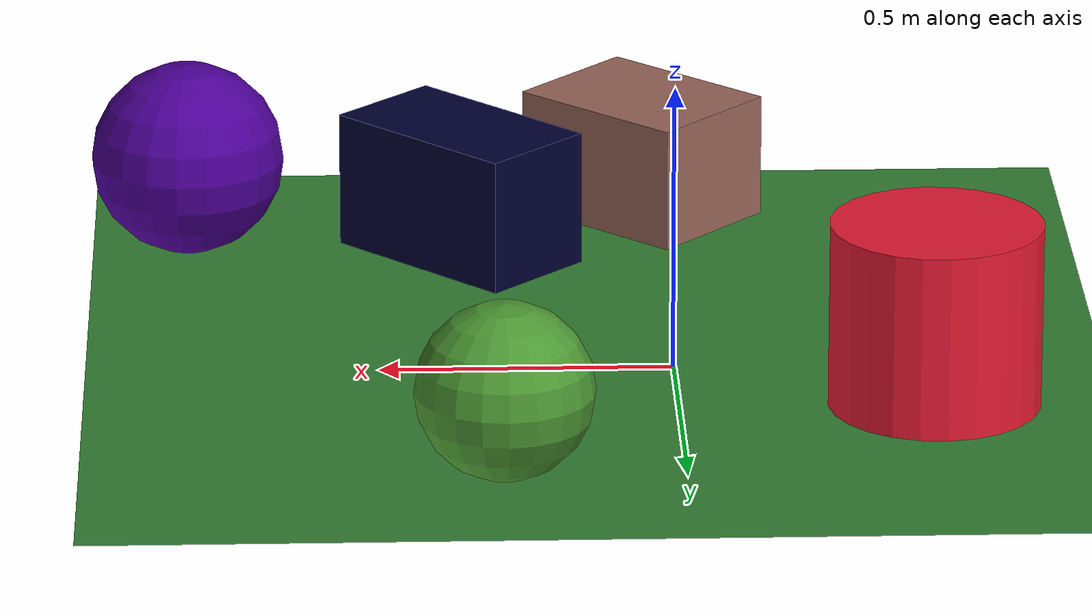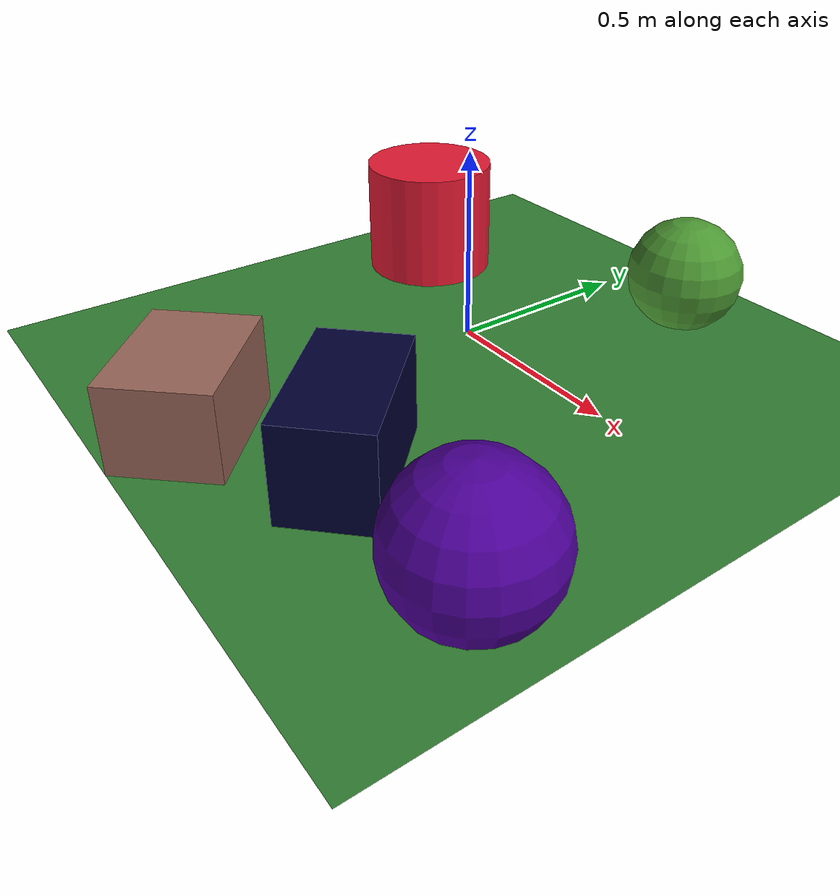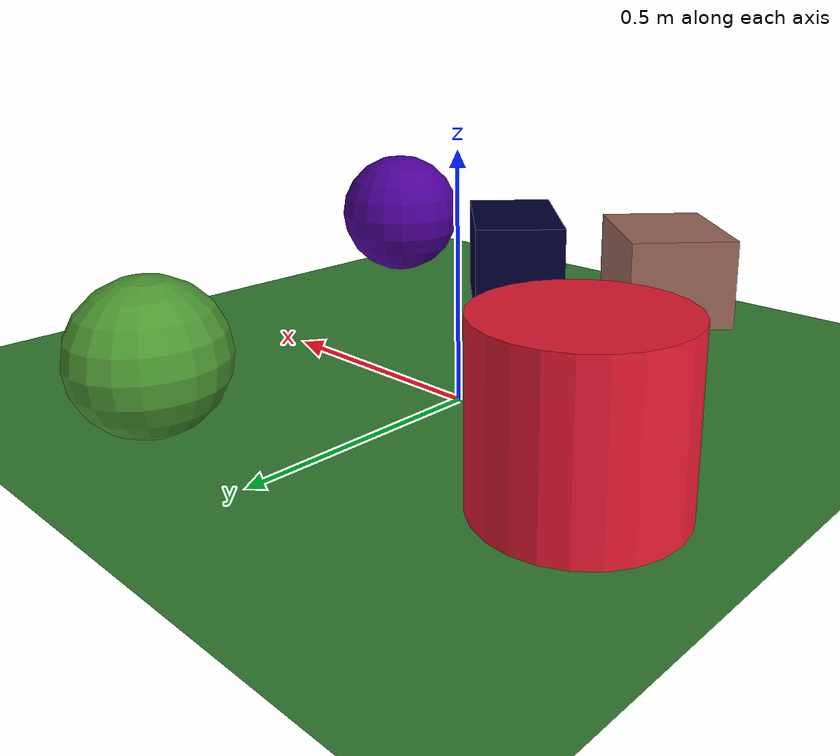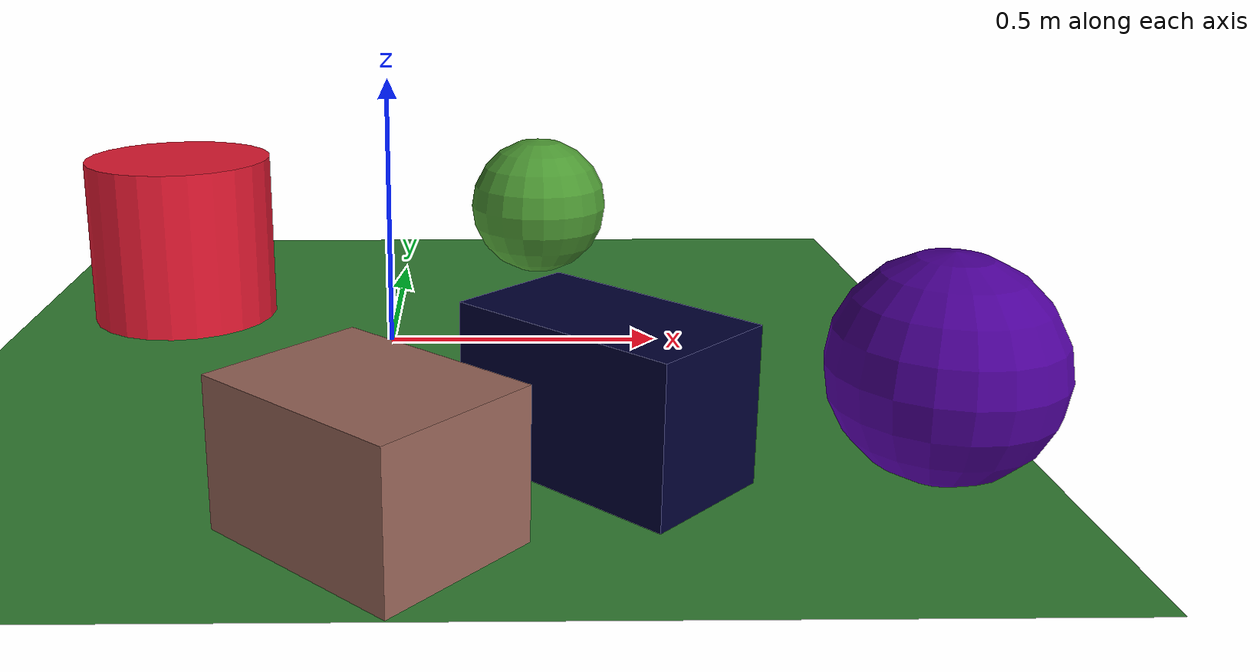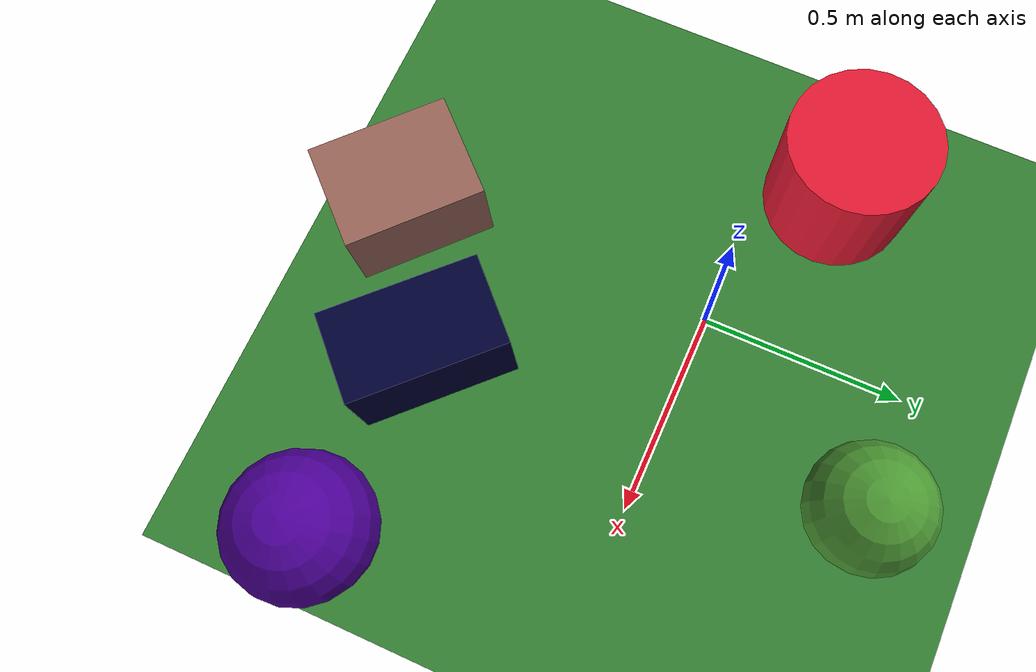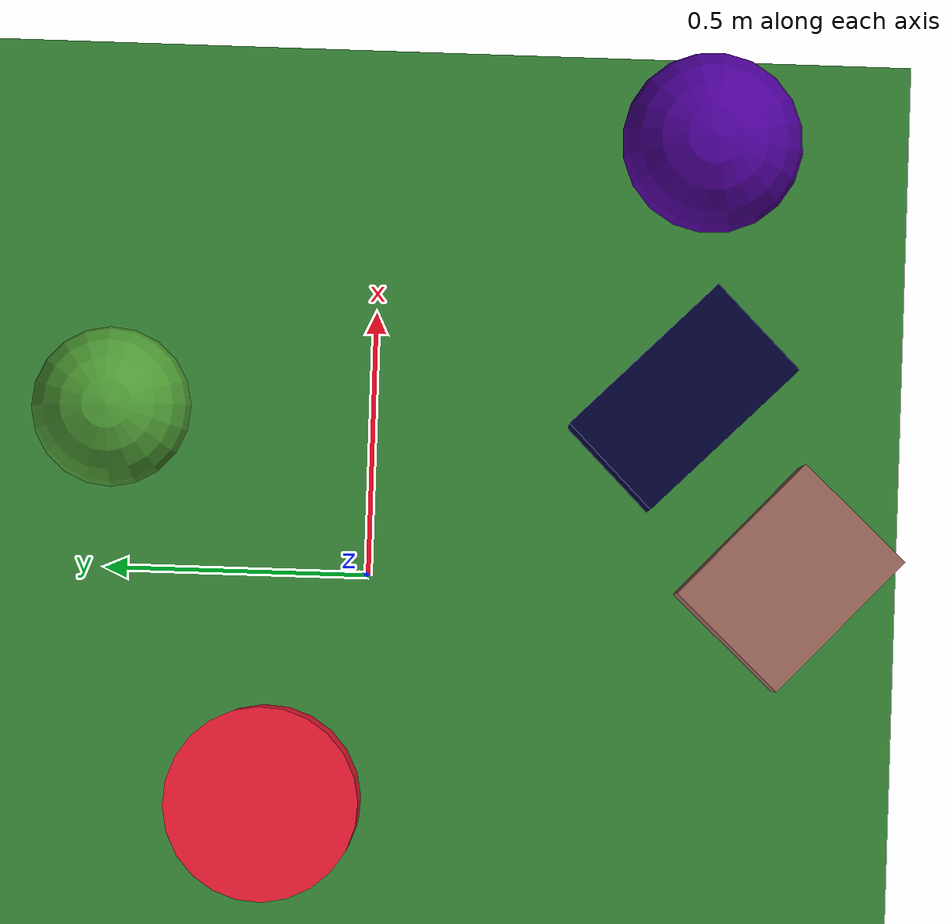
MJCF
<mujoco>
   <asset>
<texture type="skybox" builtin="gradient" rgb1="0.4 0.5 0.4" rgb2="0.6 0.3 0.3" width="256" height="256"/>
<texture name="gradient_0" builtin="gradient" rgb1="0.8 0.6 0.6" rgb2="0.4 0.2 0.1" width="200" height="200"/>
<texture name="flat_1" builtin="flat" rgb1="0.9 0.1 0.2" rgb2="0.9 0.1 0.2"  width="200" height="200"/>
<texture name="flat_2" builtin="flat" rgb1="0.0 0.0 0.2" rgb2="0.0 0.0 0.2"  width="200" height="200"/>
<texture name="flat_3" builtin="flat" rgb1="0.3 0.0 0.6" rgb2="0.3 0.0 0.6"  width="200" height="200"/>
<texture name="flat_4" builtin="flat" rgb1="0.3 0.6 0.2" rgb2="0.3 0.6 0.2"  width="200" height="200"/><material name="gradient_0_mat" reflectance="0" texture="gradient_0" texuniform="true"/>
<material name="flat_1_mat" reflectance="0" texture="flat_1" texuniform="true"/>
<material name="flat_2_mat" reflectance="0" texture="flat_2" texuniform="true"/>
<material name="flat_3_mat" reflectance="0" texture="flat_3" texuniform="true"/>
<material name="flat_4_mat" reflectance="0" texture="flat_4" texuniform="true"/>
   </asset>

   <worldbody>
      <light diffuse=".9 .9 .9" pos="0 0 3" dir="0 0 -1"/>
     <geom type="plane" size="1 1 0.1" rgba="0.2 0.5 0.2 1"/>
<geom type="box" pos="0.02 -0.79 0.11" size="0.13 0.17 0.11" material="gradient_0_mat" euler="0 0 47" />
<geom type="cylinder" pos="-0.43 0.18 0.16" size="0.18 0.16 0.16" material="flat_1_mat" euler="0 0 78" />
<geom type="box" pos="0.35 -0.58 0.12" size="0.11 0.19 0.12" material="flat_2_mat" euler="0 0 45" />
<geom type="sphere" pos="0.83 -0.62 0.17" size="0.17 0.17 0.17" material="flat_3_mat" euler="0 0 66" />
<geom type="sphere" pos="0.3 0.49 0.15" size="0.15 0.15 0.15" material="flat_4_mat" euler="0 0 2" /><camera euler="60 0 180" fovy="60" name="camera1" pos="-0.2 -1.5 1"></camera>   </worldbody>
</mujoco>
